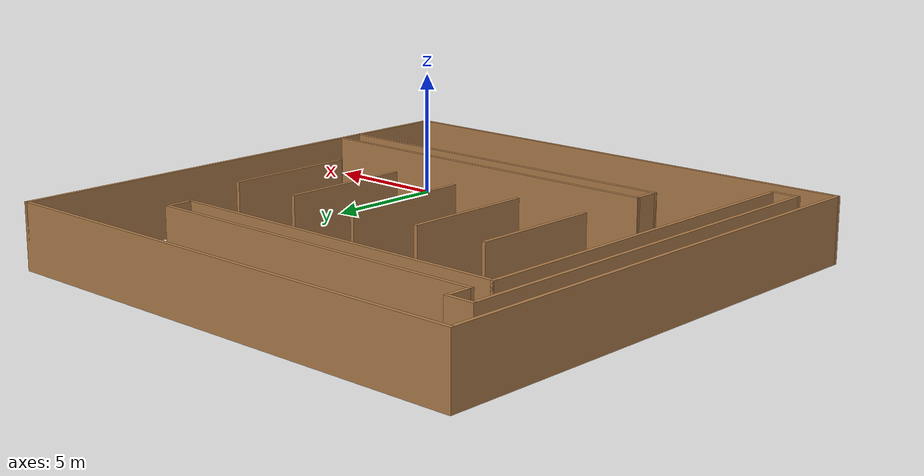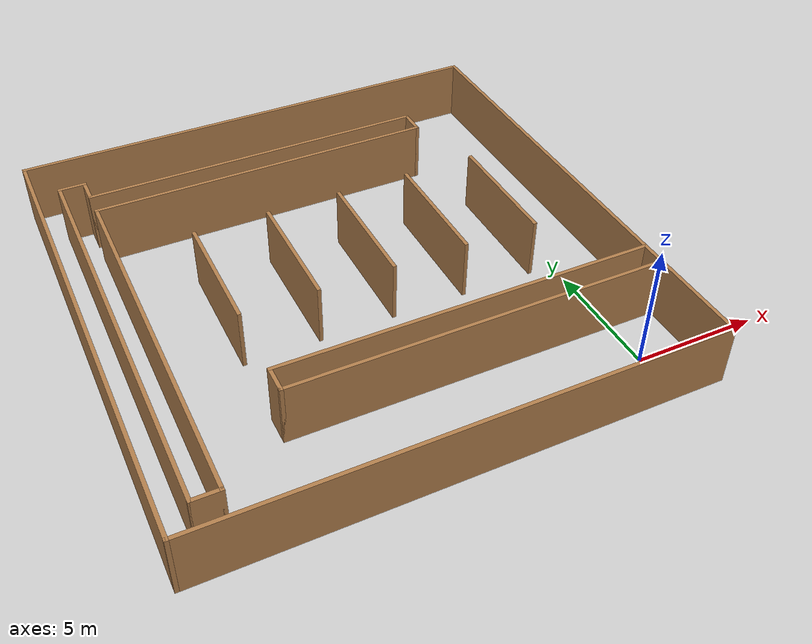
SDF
<?xml version='1.0'?>
<sdf version='1.6'>
  <model name='A1.world'>
    <pose frame=''>-8 8 0 0 -0 0</pose>
    <link name='Wall_35'>
      <collision name='Wall_35_Collision'>
        <geometry>
          <box>
            <size>17.15 0.15 2.5</size>
          </box>
        </geometry>
        <pose frame=''>0 0 1.25 0 -0 0</pose>
      </collision>
      <visual name='Wall_35_Visual'>
        <pose frame=''>0 0 1.25 0 -0 0</pose>
        <geometry>
          <box>
            <size>17.15 0.15 2.5</size>
          </box>
        </geometry>
        <material>
          <script>
            <uri>file://media/materials/scripts/gazebo.material</uri>
            <name>Gazebo/Wood</name>
          </script>
          <ambient>1 1 1 1</ambient>
        </material>
        <meta>
          <layer>0</layer>
        </meta>
      </visual>
      <pose frame=''>-9 -0.5 0 0 -0 1.5708</pose>
    </link>
    <link name='Wall_37'>
      <collision name='Wall_37_Collision'>
        <geometry>
          <box>
            <size>1.15 0.15 2.5</size>
          </box>
        </geometry>
        <pose frame=''>0 0 1.25 0 -0 0</pose>
      </collision>
      <visual name='Wall_37_Visual'>
        <pose frame=''>0 0 1.25 0 -0 0</pose>
        <geometry>
          <box>
            <size>1.15 0.15 2.5</size>
          </box>
        </geometry>
        <material>
          <script>
            <uri>file://media/materials/scripts/gazebo.material</uri>
            <name>Gazebo/Wood</name>
          </script>
          <ambient>1 1 1 1</ambient>
        </material>
        <meta>
          <layer>0</layer>
        </meta>
      </visual>
      <pose frame=''>-8.5 8 0 0 -0 0</pose>
    </link>
    <link name='Wall_39'>
      <collision name='Wall_39_Collision'>
        <geometry>
          <box>
            <size>1.15 0.15 2.5</size>
          </box>
        </geometry>
        <pose frame=''>0 0 1.25 0 -0 0</pose>
      </collision>
      <visual name='Wall_39_Visual'>
        <pose frame=''>0 0 1.25 0 -0 0</pose>
        <geometry>
          <box>
            <size>1.15 0.15 2.5</size>
          </box>
        </geometry>
        <material>
          <script>
            <uri>file://media/materials/scripts/gazebo.material</uri>
            <name>Gazebo/Wood</name>
          </script>
          <ambient>1 1 1 1</ambient>
        </material>
        <meta>
          <layer>0</layer>
        </meta>
      </visual>
      <pose frame=''>-8.5 -9 0 0 -0 0</pose>
    </link>
    <link name='Wall_4'>
      <collision name='Wall_4_Collision'>
        <geometry>
          <box>
            <size>20.15 0.15 2.5</size>
          </box>
        </geometry>
        <pose frame=''>0 0 1.25 0 -0 0</pose>
      </collision>
      <visual name='Wall_4_Visual'>
        <pose frame=''>0 0 1.25 0 -0 0</pose>
        <geometry>
          <box>
            <size>20.15 0.15 2.5</size>
          </box>
        </geometry>
        <material>
          <script>
            <uri>file://media/materials/scripts/gazebo.material</uri>
            <name>Gazebo/Wood</name>
          </script>
          <ambient>1 1 1 1</ambient>
        </material>
        <meta>
          <layer>0</layer>
        </meta>
      </visual>
      <pose frame=''>-10 0 0 0 -0 1.5708</pose>
    </link>
    <link name='Wall_41'>
      <collision name='Wall_41_Collision'>
        <geometry>
          <box>
            <size>15.15 0.15 2.5</size>
          </box>
        </geometry>
        <pose frame=''>0 0 1.25 0 -0 0</pose>
      </collision>
      <visual name='Wall_41_Visual'>
        <pose frame=''>0 0 1.25 0 -0 0</pose>
        <geometry>
          <box>
            <size>15.15 0.15 2.5</size>
          </box>
        </geometry>
        <material>
          <script>
            <uri>file://media/materials/scripts/gazebo.material</uri>
            <name>Gazebo/Wood</name>
          </script>
          <ambient>1 1 1 1</ambient>
        </material>
        <meta>
          <layer>0</layer>
        </meta>
      </visual>
      <pose frame=''>-8 -1.5 0 0 -0 1.5708</pose>
    </link>
    <link name='Wall_43'>
      <collision name='Wall_43_Collision'>
        <geometry>
          <box>
            <size>1.15 0.15 2.5</size>
          </box>
        </geometry>
        <pose frame=''>0 0 1.25 0 -0 0</pose>
      </collision>
      <visual name='Wall_43_Visual'>
        <pose frame=''>0 0 1.25 0 -0 0</pose>
        <geometry>
          <box>
            <size>1.15 0.15 2.5</size>
          </box>
        </geometry>
        <material>
          <script>
            <uri>file://media/materials/scripts/gazebo.material</uri>
            <name>Gazebo/Wood</name>
          </script>
          <ambient>1 1 1 1</ambient>
        </material>
        <meta>
          <layer>0</layer>
        </meta>
      </visual>
      <pose frame=''>-8 7.5 0 0 -0 1.5708</pose>
    </link>
    <link name='Wall_45'>
      <collision name='Wall_45_Collision'>
        <geometry>
          <box>
            <size>14.15 0.15 2.5</size>
          </box>
        </geometry>
        <pose frame=''>0 0 1.25 0 -0 0</pose>
      </collision>
      <visual name='Wall_45_Visual'>
        <pose frame=''>0 0 1.25 0 -0 0</pose>
        <geometry>
          <box>
            <size>14.15 0.15 2.5</size>
          </box>
        </geometry>
        <material>
          <script>
            <uri>file://media/materials/scripts/gazebo.material</uri>
            <name>Gazebo/Wood</name>
          </script>
          <ambient>1 1 1 1</ambient>
        </material>
        <meta>
          <layer>0</layer>
        </meta>
      </visual>
      <pose frame=''>-1 7 0 0 -0 0</pose>
    </link>
    <link name='Wall_47'>
      <collision name='Wall_47_Collision'>
        <geometry>
          <box>
            <size>14.15 0.15 2.5</size>
          </box>
        </geometry>
        <pose frame=''>0 0 1.25 0 -0 0</pose>
      </collision>
      <visual name='Wall_47_Visual'>
        <pose frame=''>0 0 1.25 0 -0 0</pose>
        <geometry>
          <box>
            <size>14.15 0.15 2.5</size>
          </box>
        </geometry>
        <material>
          <script>
            <uri>file://media/materials/scripts/gazebo.material</uri>
            <name>Gazebo/Wood</name>
          </script>
          <ambient>1 1 1 1</ambient>
        </material>
        <meta>
          <layer>0</layer>
        </meta>
      </visual>
      <pose frame=''>-1 6 0 0 -0 0</pose>
    </link>
    <link name='Wall_49'>
      <collision name='Wall_49_Collision'>
        <geometry>
          <box>
            <size>1.15 0.15 2.5</size>
          </box>
        </geometry>
        <pose frame=''>0 0 1.25 0 -0 0</pose>
      </collision>
      <visual name='Wall_49_Visual'>
        <pose frame=''>0 0 1.25 0 -0 0</pose>
        <geometry>
          <box>
            <size>1.15 0.15 2.5</size>
          </box>
        </geometry>
        <material>
          <script>
            <uri>file://media/materials/scripts/gazebo.material</uri>
            <name>Gazebo/Wood</name>
          </script>
          <ambient>1 1 1 1</ambient>
        </material>
        <meta>
          <layer>0</layer>
        </meta>
      </visual>
      <pose frame=''>6 6.5 0 0 -0 1.5708</pose>
    </link>
    <link name='Wall_5'>
      <collision name='Wall_5_Collision'>
        <geometry>
          <box>
            <size>20.15 0.15 2.5</size>
          </box>
        </geometry>
        <pose frame=''>0 0 1.25 0 -0 0</pose>
      </collision>
      <visual name='Wall_5_Visual'>
        <pose frame=''>0 0 1.25 0 -0 0</pose>
        <geometry>
          <box>
            <size>20.15 0.15 2.5</size>
          </box>
        </geometry>
        <material>
          <script>
            <uri>file://media/materials/scripts/gazebo.material</uri>
            <name>Gazebo/Wood</name>
          </script>
          <ambient>1 1 1 1</ambient>
        </material>
        <meta>
          <layer>0</layer>
        </meta>
      </visual>
      <pose frame=''>-0 10 0 0 -0 0</pose>
    </link>
    <link name='Wall_51'>
      <collision name='Wall_51_Collision'>
        <geometry>
          <box>
            <size>15.15 0.15 2.5</size>
          </box>
        </geometry>
        <pose frame=''>0 0 1.25 0 -0 0</pose>
      </collision>
      <visual name='Wall_51_Visual'>
        <pose frame=''>0 0 1.25 0 -0 0</pose>
        <geometry>
          <box>
            <size>15.15 0.15 2.5</size>
          </box>
        </geometry>
        <material>
          <script>
            <uri>file://media/materials/scripts/gazebo.material</uri>
            <name>Gazebo/Wood</name>
          </script>
          <ambient>1 1 1 1</ambient>
        </material>
        <meta>
          <layer>0</layer>
        </meta>
      </visual>
      <pose frame=''>2.5 -6 0 0 -0 0</pose>
    </link>
    <link name='Wall_53'>
      <collision name='Wall_53_Collision'>
        <geometry>
          <box>
            <size>15.15 0.15 2.5</size>
          </box>
        </geometry>
        <pose frame=''>0 0 1.25 0 -0 0</pose>
      </collision>
      <visual name='Wall_53_Visual'>
        <pose frame=''>0 0 1.25 0 -0 0</pose>
        <geometry>
          <box>
            <size>15.15 0.15 2.5</size>
          </box>
        </geometry>
        <material>
          <script>
            <uri>file://media/materials/scripts/gazebo.material</uri>
            <name>Gazebo/Wood</name>
          </script>
          <ambient>1 1 1 1</ambient>
        </material>
        <meta>
          <layer>0</layer>
        </meta>
      </visual>
      <pose frame=''>2.5 -5 0 0 -0 3.14159</pose>
    </link>
    <link name='Wall_55'>
      <collision name='Wall_55_Collision'>
        <geometry>
          <box>
            <size>1.15 0.15 2.5</size>
          </box>
        </geometry>
        <pose frame=''>0 0 1.25 0 -0 0</pose>
      </collision>
      <visual name='Wall_55_Visual'>
        <pose frame=''>0 0 1.25 0 -0 0</pose>
        <geometry>
          <box>
            <size>1.15 0.15 2.5</size>
          </box>
        </geometry>
        <material>
          <script>
            <uri>file://media/materials/scripts/gazebo.material</uri>
            <name>Gazebo/Wood</name>
          </script>
          <ambient>1 1 1 1</ambient>
        </material>
        <meta>
          <layer>0</layer>
        </meta>
      </visual>
      <pose frame=''>-5 -5.5 0 0 -0 1.5708</pose>
    </link>
    <link name='Wall_57'>
      <collision name='Wall_57_Collision'>
        <geometry>
          <box>
            <size>5.15 0.15 2.5</size>
          </box>
        </geometry>
        <pose frame=''>0 0 1.25 0 -0 0</pose>
      </collision>
      <visual name='Wall_57_Visual'>
        <pose frame=''>0 0 1.25 0 -0 0</pose>
        <geometry>
          <box>
            <size>5.15 0.15 2.5</size>
          </box>
        </geometry>
        <material>
          <script>
            <uri>file://media/materials/scripts/gazebo.material</uri>
            <name>Gazebo/Wood</name>
          </script>
          <ambient>1 1 1 1</ambient>
        </material>
        <meta>
          <layer>0</layer>
        </meta>
      </visual>
      <pose frame=''>7 0.5 0 0 -0 1.5708</pose>
    </link>
    <link name='Wall_59'>
      <collision name='Wall_59_Collision'>
        <geometry>
          <box>
            <size>5.15 0.15 2.5</size>
          </box>
        </geometry>
        <pose frame=''>0 0 1.25 0 -0 0</pose>
      </collision>
      <visual name='Wall_59_Visual'>
        <pose frame=''>0 0 1.25 0 -0 0</pose>
        <geometry>
          <box>
            <size>5.15 0.15 2.5</size>
          </box>
        </geometry>
        <material>
          <script>
            <uri>file://media/materials/scripts/gazebo.material</uri>
            <name>Gazebo/Wood</name>
          </script>
          <ambient>1 1 1 1</ambient>
        </material>
        <meta>
          <layer>0</layer>
        </meta>
      </visual>
      <pose frame=''>4 0.5 0 0 -0 1.5708</pose>
    </link>
    <link name='Wall_6'>
      <collision name='Wall_6_Collision'>
        <geometry>
          <box>
            <size>20.15 0.15 2.5</size>
          </box>
        </geometry>
        <pose frame=''>0 0 1.25 0 -0 0</pose>
      </collision>
      <visual name='Wall_6_Visual'>
        <pose frame=''>0 0 1.25 0 -0 0</pose>
        <geometry>
          <box>
            <size>20.15 0.15 2.5</size>
          </box>
        </geometry>
        <material>
          <script>
            <uri>file://media/materials/scripts/gazebo.material</uri>
            <name>Gazebo/Wood</name>
          </script>
          <ambient>1 1 1 1</ambient>
        </material>
        <meta>
          <layer>0</layer>
        </meta>
      </visual>
      <pose frame=''>10 0 0 0 -0 -1.5708</pose>
    </link>
    <link name='Wall_61'>
      <collision name='Wall_61_Collision'>
        <geometry>
          <box>
            <size>5.15 0.15 2.5</size>
          </box>
        </geometry>
        <pose frame=''>0 0 1.25 0 -0 0</pose>
      </collision>
      <visual name='Wall_61_Visual'>
        <pose frame=''>0 0 1.25 0 -0 0</pose>
        <geometry>
          <box>
            <size>5.15 0.15 2.5</size>
          </box>
        </geometry>
        <material>
          <script>
            <uri>file://media/materials/scripts/gazebo.material</uri>
            <name>Gazebo/Wood</name>
          </script>
          <ambient>1 1 1 1</ambient>
        </material>
        <meta>
          <layer>0</layer>
        </meta>
      </visual>
      <pose frame=''>1 0.5 0 0 -0 1.5708</pose>
    </link>
    <link name='Wall_63'>
      <collision name='Wall_63_Collision'>
        <geometry>
          <box>
            <size>5.15 0.15 2.5</size>
          </box>
        </geometry>
        <pose frame=''>0 0 1.25 0 -0 0</pose>
      </collision>
      <visual name='Wall_63_Visual'>
        <pose frame=''>0 0 1.25 0 -0 0</pose>
        <geometry>
          <box>
            <size>5.15 0.15 2.5</size>
          </box>
        </geometry>
        <material>
          <script>
            <uri>file://media/materials/scripts/gazebo.material</uri>
            <name>Gazebo/Wood</name>
          </script>
          <ambient>1 1 1 1</ambient>
        </material>
        <meta>
          <layer>0</layer>
        </meta>
      </visual>
      <pose frame=''>-2 0.5 0 0 -0 1.5708</pose>
    </link>
    <link name='Wall_65'>
      <collision name='Wall_65_Collision'>
        <geometry>
          <box>
            <size>5.15 0.15 2.5</size>
          </box>
        </geometry>
        <pose frame=''>0 0 1.25 0 -0 0</pose>
      </collision>
      <visual name='Wall_65_Visual'>
        <pose frame=''>0 0 1.25 0 -0 0</pose>
        <geometry>
          <box>
            <size>5.15 0.15 2.5</size>
          </box>
        </geometry>
        <material>
          <script>
            <uri>file://media/materials/scripts/gazebo.material</uri>
            <name>Gazebo/Wood</name>
          </script>
          <ambient>1 1 1 1</ambient>
        </material>
        <meta>
          <layer>0</layer>
        </meta>
      </visual>
      <pose frame=''>-5 0.5 0 0 -0 1.5708</pose>
    </link>
    <link name='Wall_7'>
      <collision name='Wall_7_Collision'>
        <geometry>
          <box>
            <size>20.15 0.15 2.5</size>
          </box>
        </geometry>
        <pose frame=''>0 0 1.25 0 -0 0</pose>
      </collision>
      <visual name='Wall_7_Visual'>
        <pose frame=''>0 0 1.25 0 -0 0</pose>
        <geometry>
          <box>
            <size>20.15 0.15 2.5</size>
          </box>
        </geometry>
        <material>
          <script>
            <uri>file://media/materials/scripts/gazebo.material</uri>
            <name>Gazebo/Wood</name>
          </script>
          <ambient>1 1 1 1</ambient>
        </material>
        <meta>
          <layer>0</layer>
        </meta>
      </visual>
      <pose frame=''>-0 -10 0 0 -0 3.14159</pose>
    </link>
    <static>1</static>
  </model>
</sdf>
